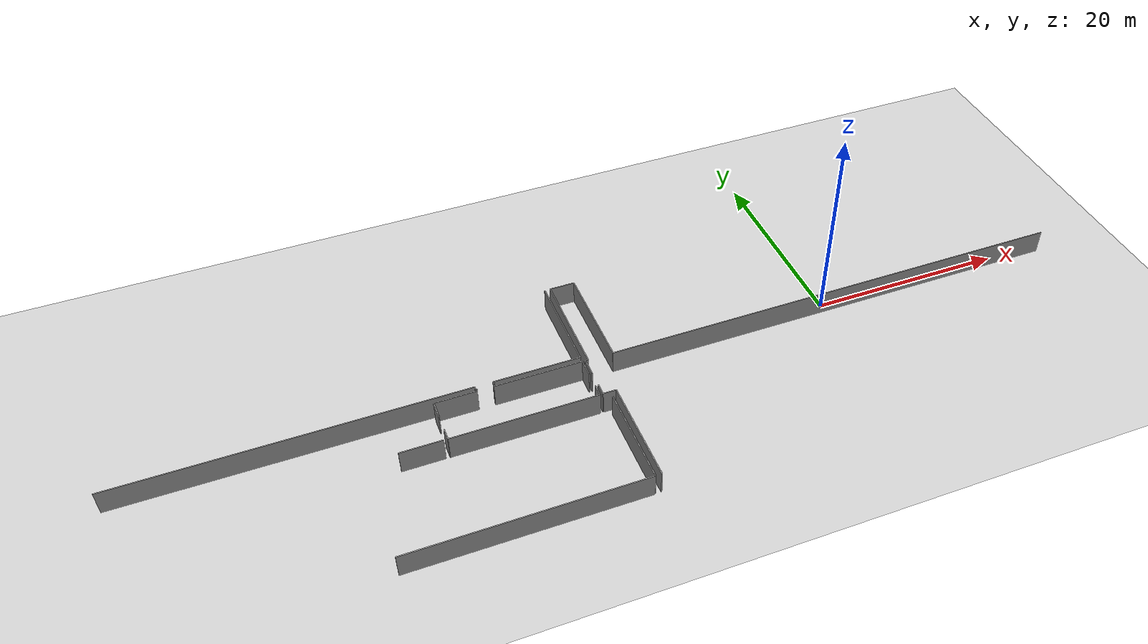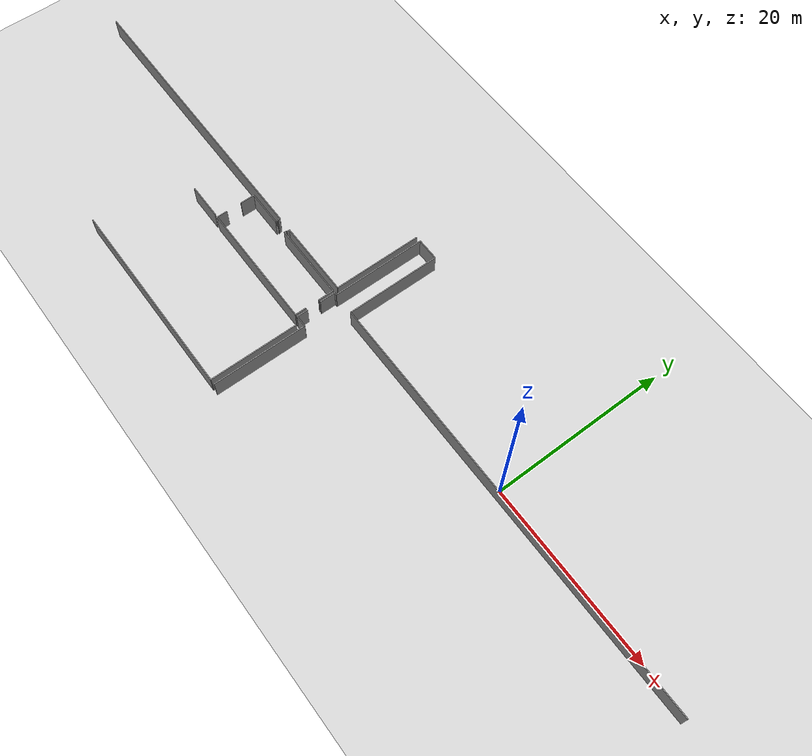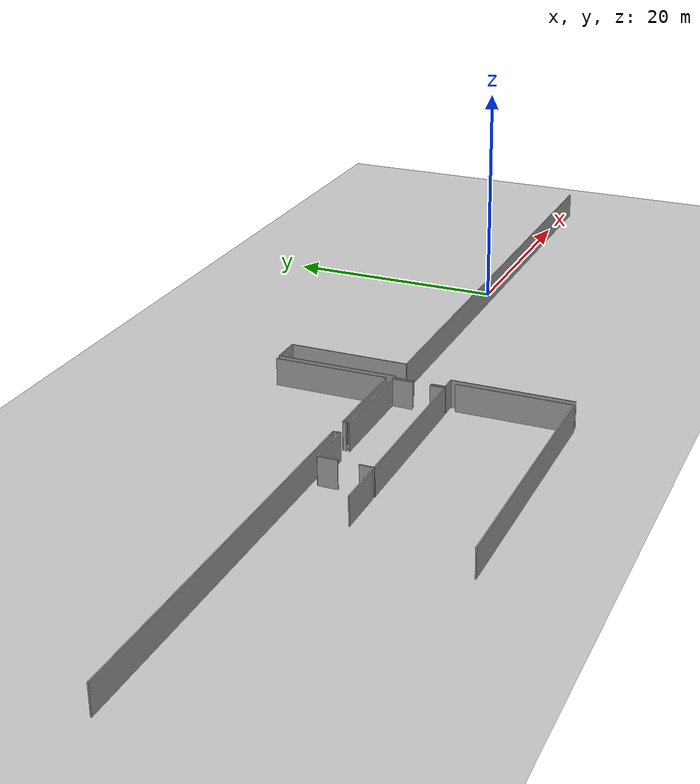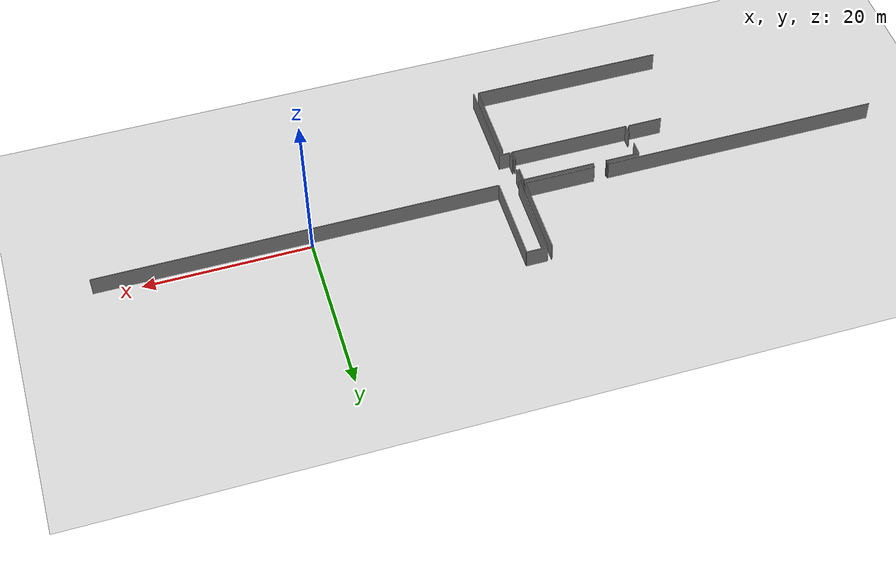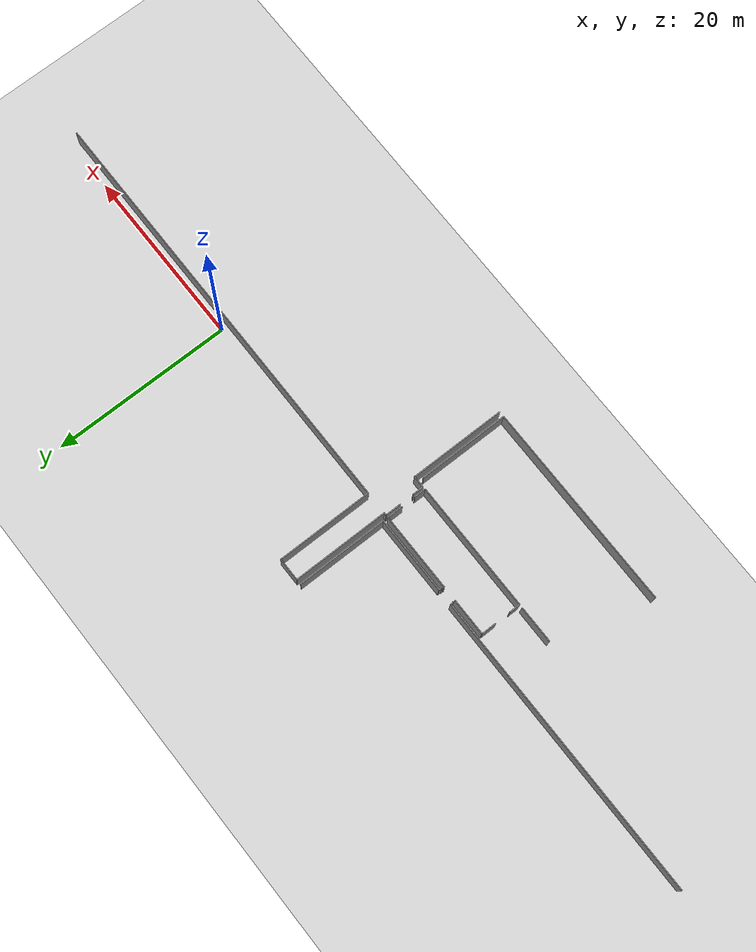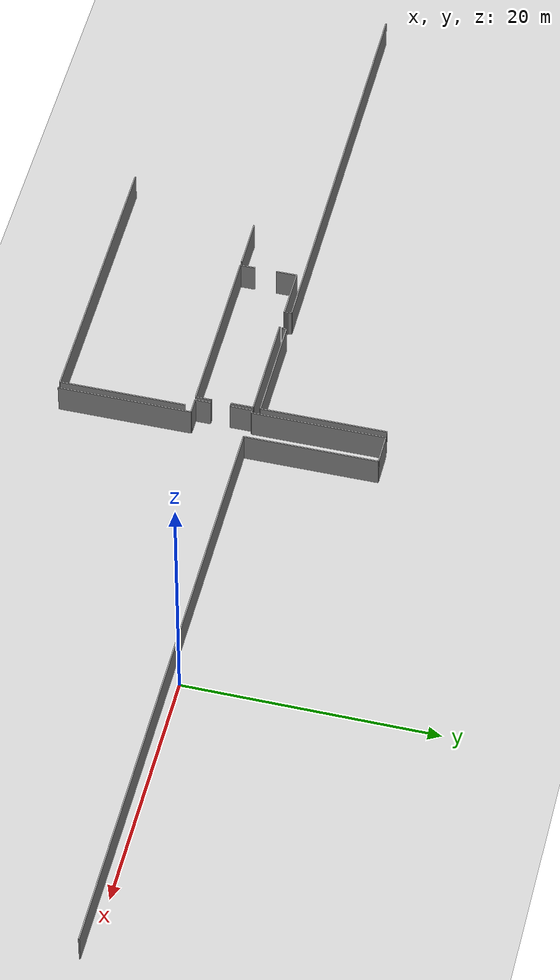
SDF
<sdf version="1.6">
 <world name="default">
  <model name="ground_plane">
   <static>1</static>
   <link name="link">
    <collision name="collision">
     <geometry><plane><normal>0 0 1</normal><size>100 100</size></plane></geometry>
     <surface><friction><ode><mu>100</mu><mu2>50</mu2></ode></friction></surface>
    </collision>
    <visual name="visual">
     <cast_shadows>0</cast_shadows>
     <geometry><plane><normal>0 0 1</normal><size>100 100</size></plane></geometry>
     <material>
      <script><uri>file://media/materials/scripts/gazebo.material</uri><name>Gazebo/Grey</name></script>
     </material>
    </visual>
   </link>
  </model>
  <model name="50055637">
   <static>1</static>
   <link name="Wall_9">
    <collision name="Wall_9_Collision">
     <geometry><box><size>10.0919062772 0.1 2.5</size></box></geometry>
     <pose>5.0459531386 0 1.25 0 0 0</pose>
    </collision>
    <visual name="Wall_9_Visual">
     <pose>5.0459531386 0 1.25 0 0 0</pose>
     <geometry><box><size>10.0919062772 0.1 2.5</size></box></geometry>
     <material>
      <script><uri>file://media/materials/scripts/gazebo.material</uri><name>Gazebo/Grey</name></script>
      <ambient>1 1 1 1</ambient>
     </material>
    </visual>
    <pose>48.1947117369 -5.37210291979 0 0 0 -1.57079632679</pose>
   </link>
   <link name="Wall_10">
    <collision name="Wall_10_Collision">
     <geometry><box><size>8.60171617665 0.1 2.5</size></box></geometry>
     <pose>4.30085808832 0 1.25 0 0 0</pose>
    </collision>
    <visual name="Wall_10_Visual">
     <pose>4.30085808832 0 1.25 0 0 0</pose>
     <geometry><box><size>8.60171617665 0.1 2.5</size></box></geometry>
     <material>
      <script><uri>file://media/materials/scripts/gazebo.material</uri><name>Gazebo/Grey</name></script>
      <ambient>1 1 1 1</ambient>
     </material>
    </visual>
    <pose>48.1947117369 -15.464009197 0 0 0 3.14159265359</pose>
   </link>
   <link name="Wall_11">
    <collision name="Wall_11_Collision">
     <geometry><box><size>0.336629764423 0.1 2.5</size></box></geometry>
     <pose>0.168314882211 0 1.25 0 0 0</pose>
    </collision>
    <visual name="Wall_11_Visual">
     <pose>0.168314882211 0 1.25 0 0 0</pose>
     <geometry><box><size>0.336629764423 0.1 2.5</size></box></geometry>
     <material>
      <script><uri>file://media/materials/scripts/gazebo.material</uri><name>Gazebo/Grey</name></script>
      <ambient>1 1 1 1</ambient>
     </material>
    </visual>
    <pose>39.5929955603 -15.464009197 0 0 0 -1.57079632679</pose>
   </link>
   <link name="Wall_12">
    <collision name="Wall_12_Collision">
     <geometry><box><size>0.10479983232 0.1 2.5</size></box></geometry>
     <pose>0.0523999161601 0 1.25 0 0 0</pose>
    </collision>
    <visual name="Wall_12_Visual">
     <pose>0.0523999161601 0 1.25 0 0 0</pose>
     <geometry><box><size>0.10479983232 0.1 2.5</size></box></geometry>
     <material>
      <script><uri>file://media/materials/scripts/gazebo.material</uri><name>Gazebo/Grey</name></script>
      <ambient>1 1 1 1</ambient>
     </material>
    </visual>
    <pose>39.5929955603 -15.8006389614 0 0 0 3.14159265359</pose>
   </link>
   <link name="Wall_13">
    <collision name="Wall_13_Collision">
     <geometry><box><size>0.129189611478 0.1 2.5</size></box></geometry>
     <pose>0.0645948057392 0 1.25 0 0 0</pose>
    </collision>
    <visual name="Wall_13_Visual">
     <pose>0.0645948057392 0 1.25 0 0 0</pose>
     <geometry><box><size>0.129189611478 0.1 2.5</size></box></geometry>
     <material>
      <script><uri>file://media/materials/scripts/gazebo.material</uri><name>Gazebo/Grey</name></script>
      <ambient>1 1 1 1</ambient>
     </material>
    </visual>
    <pose>37.9441448651 -15.8006389614 0 0 0 3.14159265359</pose>
   </link>
   <link name="Wall_14">
    <collision name="Wall_14_Collision">
     <geometry><box><size>0.339805516917 0.1 2.5</size></box></geometry>
     <pose>0.169902758459 0 1.25 0 0 0</pose>
    </collision>
    <visual name="Wall_14_Visual">
     <pose>0.169902758459 0 1.25 0 0 0</pose>
     <geometry><box><size>0.339805516917 0.1 2.5</size></box></geometry>
     <material>
      <script><uri>file://media/materials/scripts/gazebo.material</uri><name>Gazebo/Grey</name></script>
      <ambient>1 1 1 1</ambient>
     </material>
    </visual>
    <pose>37.8149552536 -15.8006389614 0 0 0 1.57079632679</pose>
   </link>
   <link name="Wall_15">
    <collision name="Wall_15_Collision">
     <geometry><box><size>33.8066474851 0.1 2.5</size></box></geometry>
     <pose>16.9033237426 0 1.25 0 0 0</pose>
    </collision>
    <visual name="Wall_15_Visual">
     <pose>16.9033237426 0 1.25 0 0 0</pose>
     <geometry><box><size>33.8066474851 0.1 2.5</size></box></geometry>
     <material>
      <script><uri>file://media/materials/scripts/gazebo.material</uri><name>Gazebo/Grey</name></script>
      <ambient>1 1 1 1</ambient>
     </material>
    </visual>
    <pose>37.8149552536 -15.4608334445 0 0 0 3.14159265359</pose>
   </link>
   <link name="Wall_43">
    <collision name="Wall_43_Collision">
     <geometry><box><size>10.0823790197 0.1 2.5</size></box></geometry>
     <pose>5.04118950985 0 1.25 0 0 0</pose>
    </collision>
    <visual name="Wall_43_Visual">
     <pose>5.04118950985 0 1.25 0 0 0</pose>
     <geometry><box><size>10.0823790197 0.1 2.5</size></box></geometry>
     <material>
      <script><uri>file://media/materials/scripts/gazebo.material</uri><name>Gazebo/Grey</name></script>
      <ambient>1 1 1 1</ambient>
     </material>
    </visual>
    <pose>49.1873249366 -21.2241890716 0 0 0 -1.57079632679</pose>
   </link>
   <link name="Wall_44">
    <collision name="Wall_44_Collision">
     <geometry><box><size>22.9427805576 0.1 2.5</size></box></geometry>
     <pose>11.4713902788 0 1.25 0 0 0</pose>
    </collision>
    <visual name="Wall_44_Visual">
     <pose>11.4713902788 0 1.25 0 0 0</pose>
     <geometry><box><size>22.9427805576 0.1 2.5</size></box></geometry>
     <material>
      <script><uri>file://media/materials/scripts/gazebo.material</uri><name>Gazebo/Grey</name></script>
      <ambient>1 1 1 1</ambient>
     </material>
    </visual>
    <pose>49.1873249366 -31.3065680913 0 0 0 3.14126044424</pose>
   </link>
   <link name="Wall_53">
    <collision name="Wall_53_Collision">
     <geometry><box><size>4.12911339342 0.1 2.5</size></box></geometry>
     <pose>2.06455669671 0 1.25 0 0 0</pose>
    </collision>
    <visual name="Wall_53_Visual">
     <pose>2.06455669671 0 1.25 0 0 0</pose>
     <geometry><box><size>4.12911339342 0.1 2.5</size></box></geometry>
     <material>
      <script><uri>file://media/materials/scripts/gazebo.material</uri><name>Gazebo/Grey</name></script>
      <ambient>1 1 1 1</ambient>
     </material>
    </visual>
    <pose>33.3760154469 -20.6303233551 0 0 0 3.14159265359</pose>
   </link>
   <link name="Wall_64">
    <collision name="Wall_64_Collision">
     <geometry><box><size>1.21796459671 0.1 2.5</size></box></geometry>
     <pose>0.608982298356 0 1.25 0 0 0</pose>
    </collision>
    <visual name="Wall_64_Visual">
     <pose>0.608982298356 0 1.25 0 0 0</pose>
     <geometry><box><size>1.21796459671 0.1 2.5</size></box></geometry>
     <material>
      <script><uri>file://media/materials/scripts/gazebo.material</uri><name>Gazebo/Grey</name></script>
      <ambient>1 1 1 1</ambient>
     </material>
    </visual>
    <pose>33.7585030773 -20.6512833216 0 0 0 1.57079632679</pose>
   </link>
   <link name="Wall_65">
    <collision name="Wall_65_Collision">
     <geometry><box><size>1.66993769174 0.1 2.5</size></box></geometry>
     <pose>0.834968845868 0 1.25 0 0 0</pose>
    </collision>
    <visual name="Wall_65_Visual">
     <pose>0.834968845868 0 1.25 0 0 0</pose>
     <geometry><box><size>1.66993769174 0.1 2.5</size></box></geometry>
     <material>
      <script><uri>file://media/materials/scripts/gazebo.material</uri><name>Gazebo/Grey</name></script>
      <ambient>1 1 1 1</ambient>
     </material>
    </visual>
    <pose>33.7585030773 -17.7036768862 0 0 0 1.57079632679</pose>
   </link>
   <link name="Wall_66">
    <collision name="Wall_66_Collision">
     <geometry><box><size>4.13355944691 0.1 2.5</size></box></geometry>
     <pose>2.06677972346 0 1.25 0 0 0</pose>
    </collision>
    <visual name="Wall_66_Visual">
     <pose>2.06677972346 0 1.25 0 0 0</pose>
     <geometry><box><size>4.13355944691 0.1 2.5</size></box></geometry>
     <material>
      <script><uri>file://media/materials/scripts/gazebo.material</uri><name>Gazebo/Grey</name></script>
      <ambient>1 1 1 1</ambient>
     </material>
    </visual>
    <pose>33.7585030773 -16.0337391945 0 0 0 0.0</pose>
   </link>
   <link name="Wall_67">
    <collision name="Wall_67_Collision">
     <geometry><box><size>8.72366507244 0.1 2.5</size></box></geometry>
     <pose>4.36183253622 0 1.25 0 0 0</pose>
    </collision>
    <visual name="Wall_67_Visual">
     <pose>4.36183253622 0 1.25 0 0 0</pose>
     <geometry><box><size>8.72366507244 0.1 2.5</size></box></geometry>
     <material>
      <script><uri>file://media/materials/scripts/gazebo.material</uri><name>Gazebo/Grey</name></script>
      <ambient>1 1 1 1</ambient>
     </material>
    </visual>
    <pose>39.4763819287 -16.0337391945 0 0 0 0.0</pose>
   </link>
   <link name="Wall_68">
    <collision name="Wall_68_Collision">
     <geometry><box><size>1.78528102234 0.1 2.5</size></box></geometry>
     <pose>0.892640511169 0 1.25 0 0 0</pose>
    </collision>
    <visual name="Wall_68_Visual">
     <pose>0.892640511169 0 1.25 0 0 0</pose>
     <geometry><box><size>1.78528102234 0.1 2.5</size></box></geometry>
     <material>
      <script><uri>file://media/materials/scripts/gazebo.material</uri><name>Gazebo/Grey</name></script>
      <ambient>1 1 1 1</ambient>
     </material>
    </visual>
    <pose>48.2000470011 -16.0337391945 0 0 0 -1.57079632679</pose>
   </link>
   <link name="Wall_69">
    <collision name="Wall_69_Collision">
     <geometry><box><size>1.27843092421 0.1 2.5</size></box></geometry>
     <pose>0.639215462104 0 1.25 0 0 0</pose>
    </collision>
    <visual name="Wall_69_Visual">
     <pose>0.639215462104 0 1.25 0 0 0</pose>
     <geometry><box><size>1.27843092421 0.1 2.5</size></box></geometry>
     <material>
      <script><uri>file://media/materials/scripts/gazebo.material</uri><name>Gazebo/Grey</name></script>
      <ambient>1 1 1 1</ambient>
     </material>
    </visual>
    <pose>48.2000470011 -19.3670090128 0 0 0 -1.57079632679</pose>
   </link>
   <link name="Wall_70">
    <collision name="Wall_70_Collision">
     <geometry><box><size>14.4396384723 0.1 2.5</size></box></geometry>
     <pose>7.21981923617 0 1.25 0 0 0</pose>
    </collision>
    <visual name="Wall_70_Visual">
     <pose>7.21981923617 0 1.25 0 0 0</pose>
     <geometry><box><size>14.4396384723 0.1 2.5</size></box></geometry>
     <material>
      <script><uri>file://media/materials/scripts/gazebo.material</uri><name>Gazebo/Grey</name></script>
      <ambient>1 1 1 1</ambient>
     </material>
    </visual>
    <pose>48.2000470011 -20.645439937 0 0 0 3.14159265359</pose>
   </link>
   <link name="Wall_71">
    <collision name="Wall_71_Collision">
     <geometry><box><size>0.00614620930923 0.1 2.5</size></box></geometry>
     <pose>0.00307310465461 0 1.25 0 0 0</pose>
    </collision>
    <visual name="Wall_71_Visual">
     <pose>0.00307310465461 0 1.25 0 0 0</pose>
     <geometry><box><size>0.00614620930923 0.1 2.5</size></box></geometry>
     <material>
      <script><uri>file://media/materials/scripts/gazebo.material</uri><name>Gazebo/Grey</name></script>
      <ambient>1 1 1 1</ambient>
     </material>
    </visual>
    <pose>33.7604085288 -20.645439937 0 0 0 -1.88601102655</pose>
   </link>
   <link name="Wall_72">
    <collision name="Wall_72_Collision">
     <geometry><box><size>10.6961884619 0.1 2.5</size></box></geometry>
     <pose>5.34809423093 0 1.25 0 0 0</pose>
    </collision>
    <visual name="Wall_72_Visual">
     <pose>5.34809423093 0 1.25 0 0 0</pose>
     <geometry><box><size>10.6961884619 0.1 2.5</size></box></geometry>
     <material>
      <script><uri>file://media/materials/scripts/gazebo.material</uri><name>Gazebo/Grey</name></script>
      <ambient>1 1 1 1</ambient>
     </material>
    </visual>
    <pose>49.7847474959 -31.3113952351 0 0 0 1.57079632679</pose>
   </link>
   <link name="Wall_73">
    <collision name="Wall_73_Collision">
     <geometry><box><size>1.29939089067 0.1 2.5</size></box></geometry>
     <pose>0.649695445336 0 1.25 0 0 0</pose>
    </collision>
    <visual name="Wall_73_Visual">
     <pose>0.649695445336 0 1.25 0 0 0</pose>
     <geometry><box><size>1.29939089067 0.1 2.5</size></box></geometry>
     <material>
      <script><uri>file://media/materials/scripts/gazebo.material</uri><name>Gazebo/Grey</name></script>
      <ambient>1 1 1 1</ambient>
     </material>
    </visual>
    <pose>49.7847474959 -20.6152067732 0 0 0 3.14159265359</pose>
   </link>
   <link name="Wall_74">
    <collision name="Wall_74_Collision">
     <geometry><box><size>1.24730854976 0.1 2.5</size></box></geometry>
     <pose>0.62365427488 0 1.25 0 0 0</pose>
    </collision>
    <visual name="Wall_74_Visual">
     <pose>0.62365427488 0 1.25 0 0 0</pose>
     <geometry><box><size>1.24730854976 0.1 2.5</size></box></geometry>
     <material>
      <script><uri>file://media/materials/scripts/gazebo.material</uri><name>Gazebo/Grey</name></script>
      <ambient>1 1 1 1</ambient>
     </material>
    </visual>
    <pose>48.4853566052 -20.6152067732 0 0 0 1.57079632679</pose>
   </link>
   <link name="Wall_75">
    <collision name="Wall_75_Collision">
     <geometry><box><size>1.78642429324 0.1 2.5</size></box></geometry>
     <pose>0.893212146618 0 1.25 0 0 0</pose>
    </collision>
    <visual name="Wall_75_Visual">
     <pose>0.893212146618 0 1.25 0 0 0</pose>
     <geometry><box><size>1.78642429324 0.1 2.5</size></box></geometry>
     <material>
      <script><uri>file://media/materials/scripts/gazebo.material</uri><name>Gazebo/Grey</name></script>
      <ambient>1 1 1 1</ambient>
     </material>
    </visual>
    <pose>48.4853566052 -17.8253717218 0 0 0 1.57079632679</pose>
   </link>
   <link name="Wall_76">
    <collision name="Wall_76_Collision">
     <geometry><box><size>0.283150092414 0.1 2.5</size></box></geometry>
     <pose>0.141575046207 0 1.25 0 0 0</pose>
    </collision>
    <visual name="Wall_76_Visual">
     <pose>0.141575046207 0 1.25 0 0 0</pose>
     <geometry><box><size>0.283150092414 0.1 2.5</size></box></geometry>
     <material>
      <script><uri>file://media/materials/scripts/gazebo.material</uri><name>Gazebo/Grey</name></script>
      <ambient>1 1 1 1</ambient>
     </material>
    </visual>
    <pose>48.4853566052 -16.0389474286 0 0 0 0.0</pose>
   </link>
   <link name="Wall_77">
    <collision name="Wall_77_Collision">
     <geometry><box><size>10.6813259402 0.1 2.5</size></box></geometry>
     <pose>5.34066297009 0 1.25 0 0 0</pose>
    </collision>
    <visual name="Wall_77_Visual">
     <pose>5.34066297009 0 1.25 0 0 0</pose>
     <geometry><box><size>10.6813259402 0.1 2.5</size></box></geometry>
     <material>
      <script><uri>file://media/materials/scripts/gazebo.material</uri><name>Gazebo/Grey</name></script>
      <ambient>1 1 1 1</ambient>
     </material>
    </visual>
    <pose>48.7685066977 -16.0389474286 0 0 0 1.57079632679</pose>
   </link>
   <link name="Wall_78">
    <collision name="Wall_78_Collision">
     <geometry><box><size>2.51316349409 0.1 2.5</size></box></geometry>
     <pose>1.25658174704 0 1.25 0 0 0</pose>
    </collision>
    <visual name="Wall_78_Visual">
     <pose>1.25658174704 0 1.25 0 0 0</pose>
     <geometry><box><size>2.51316349409 0.1 2.5</size></box></geometry>
     <material>
      <script><uri>file://media/materials/scripts/gazebo.material</uri><name>Gazebo/Grey</name></script>
      <ambient>1 1 1 1</ambient>
     </material>
    </visual>
    <pose>48.7685066977 -5.35762148841 0 0 0 0.0</pose>
   </link>
   <link name="Wall_79">
    <collision name="Wall_79_Collision">
     <geometry><box><size>10.6885666559 0.1 2.5</size></box></geometry>
     <pose>5.34428332793 0 1.25 0 0 0</pose>
    </collision>
    <visual name="Wall_79_Visual">
     <pose>5.34428332793 0 1.25 0 0 0</pose>
     <geometry><box><size>10.6885666559 0.1 2.5</size></box></geometry>
     <material>
      <script><uri>file://media/materials/scripts/gazebo.material</uri><name>Gazebo/Grey</name></script>
      <ambient>1 1 1 1</ambient>
     </material>
    </visual>
    <pose>51.2816701918 -5.35762148841 0 0 0 -1.57079632679</pose>
   </link>
   <link name="Wall_80">
    <collision name="Wall_80_Collision">
     <geometry><box><size>48.3150092414 0.1 2.5</size></box></geometry>
     <pose>24.1575046207 0 1.25 0 0 0</pose>
    </collision>
    <visual name="Wall_80_Visual">
     <pose>24.1575046207 0 1.25 0 0 0</pose>
     <geometry><box><size>48.3150092414 0.1 2.5</size></box></geometry>
     <material>
      <script><uri>file://media/materials/scripts/gazebo.material</uri><name>Gazebo/Grey</name></script>
      <ambient>1 1 1 1</ambient>
     </material>
    </visual>
    <pose>51.2816701918 -16.0461881443 0 0 0 0.0</pose>
   </link>
   <pose>-74.15 15.3113952351 0 0 0 0</pose>
  </model>
 </world>
</sdf>
